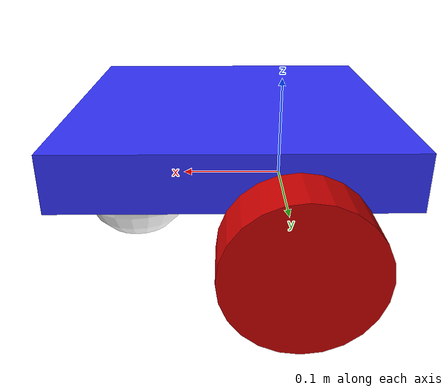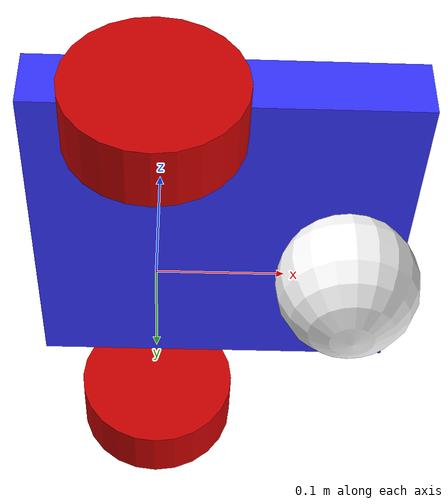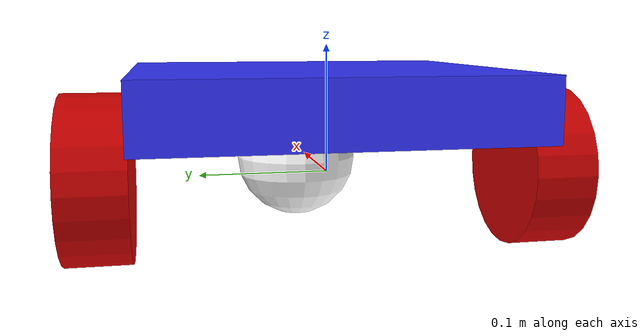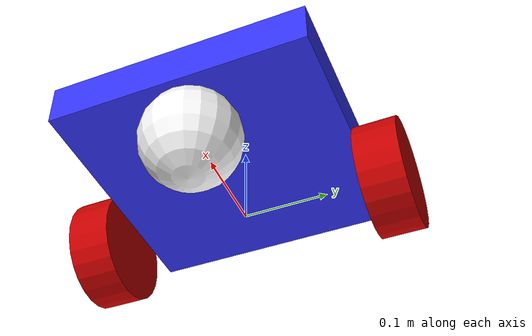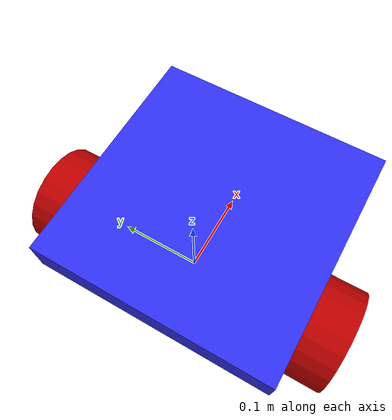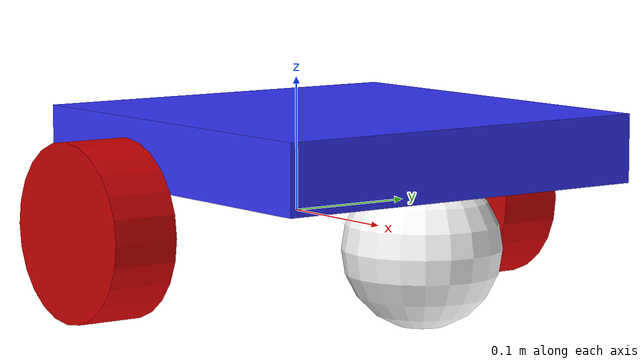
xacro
<?xml version="1.0"?>
<robot xmlns:xacro="http://www.ros.org/wiki/xacro" >

    <xacro:include filename="inertial_macros.xacro"/>

    <xacro:property name="wheel_radius" value="0.065"/>
    <xacro:property name="wheel_width" value="0.05"/>

    <material name="white">
        <color rgba="1 1 1 1" />
    </material>

    <material name="orange">
        <color rgba="1 0.3 0.1 1"/>
    </material>

    <material name="blue">
        <color rgba="0.2 0.2 1 1"/>
    </material>

    <material name="black">
        <color rgba="0 0 0 1"/>
    </material>

    <material name="red">
        <color rgba="0.8 0.0 0.0 1.0"/>
    </material>

    <!-- BASE LINK -->

    <link name="base_link">

    </link>

    <joint name="base_footprint_joint" type="fixed">
        <parent link="base_link"/>
        <child link="base_footprint"/>
        <origin xyz="0 0 0" rpy="0 0 0"/>
    </joint>

    <link name="base_footprint">
    </link>

    <!-- CHASSIS LINK -->

    <joint name="chassis_joint" type="fixed">
        <parent link="base_link"/>
        <child link="chassis"/>
        <origin xyz="-0.1 0 0"/>
    </joint>

    <link name="chassis">
        <visual>
            <origin xyz="0.15 0 0.055"/>
            <geometry>
                <box size="0.3 0.3 0.05"/>
            </geometry>
            <material name="blue"/>
        </visual>
        <collision>
            <origin xyz="0.15 0 0.055"/>
            <geometry>
                <box size="0.3 0.3 0.05"/>
            </geometry>
        </collision>
        <xacro:inertial_box mass="3" x="0.3" y="0.3" z="0.05">
            <origin xyz="0.15 0 0.055" rpy="0 0 0"/>
        </xacro:inertial_box>
    </link>

    <gazebo reference="chassis">
        <material>Gazebo/Blue</material>
    </gazebo>

    <!-- LEFT WHEEL LINK -->

    <joint name="left_wheel_joint" type="continuous">
        <parent link="base_link"/>
        <child link="left_wheel"/>
        <origin xyz="0 0.175 0" rpy="-${pi/2} 0 0" />
        <axis xyz="0 0 1"/>
    </joint>

    <link name="left_wheel">
        <visual>
            <geometry>
                <cylinder radius="${wheel_radius}" length="${wheel_width}"/>
            </geometry>
            <material name="red"/>
        </visual>
        <collision>
            <geometry>
                <cylinder radius="${wheel_radius}" length="${wheel_width}"/>
            </geometry>
        </collision>
        <xacro:inertial_cylinder mass="0.1" length="${wheel_width}" radius="${wheel_radius}">
            <origin xyz="0 0 0" rpy="0 0 0"/>
        </xacro:inertial_cylinder>
    </link>

    <gazebo reference="left_wheel">
        <material>Gazebo/Red</material>
    </gazebo>
    <!-- RIGHT WHEEL LINK -->

    <joint name="right_wheel_joint" type="continuous">
        <parent link="base_link"/>
        <child link="right_wheel"/>
        <origin xyz="0 -0.175 0" rpy="${pi/2} 0 0" />
        <axis xyz="0 0 -1"/>
    </joint>

    <link name="right_wheel">
        <visual>
            <geometry>
                <cylinder radius="${wheel_radius}" length="${wheel_width}"/>
            </geometry>
            <material name="red"/>
        </visual>
        <collision>
            <geometry>
                <cylinder radius="${wheel_radius}" length="${wheel_width}"/>
            </geometry>
        </collision>
        <xacro:inertial_cylinder mass="0.1" length="${wheel_width}" radius="${wheel_radius}">
            <origin xyz="0 0 0" rpy="0 0 0"/>
        </xacro:inertial_cylinder>
    </link>

    <gazebo reference="right_wheel">
        <material>Gazebo/Red</material>
    </gazebo>

    <!-- CASTER WHEEL LINK -->

    <joint name="caster_wheel_joint" type="fixed">
        <parent link="chassis"/>
        <child link="caster_wheel"/>
        <origin xyz="0.25 0 -0.01"/>
    </joint>

    <link name="caster_wheel">
        <visual>
            <geometry>
                <sphere radius="0.057"/>
            </geometry>
            <material name="white"/>
        </visual>
        <collision>
            <geometry>
                <sphere radius="0.057"/>
            </geometry>
        </collision>
        <xacro:inertial_sphere mass="0.1" radius="0.057">
            <origin xyz="0 0 0" rpy="0 0 0"/>
        </xacro:inertial_sphere>
    </link>

    <gazebo reference="caster_wheel">
        <material>Gazebo/White</material>
        <!-- Setting the caster wheel friction coefficients so that the robot doesnt jump around -->
        <mu1>0.00001</mu1>
        <mu2>0.00001</mu2>
    </gazebo>

</robot>
